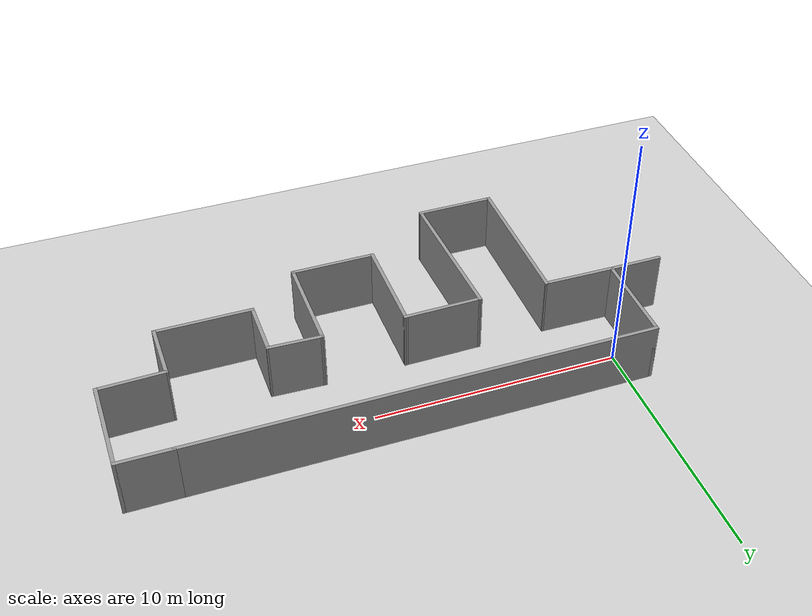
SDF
<sdf version="1.7">
 <world name="lab_world">
  <gravity>0 0 -9.8</gravity>
  <model name="ground_plane">
   <static>1</static>
   <link name="link">
    <collision name="collision">
     <geometry><plane><normal>0 0 1</normal><size>100 100</size></plane></geometry>
     <surface><friction><ode><mu>100</mu><mu2>50</mu2></ode></friction></surface>
    </collision>
    <visual name="visual">
     <cast_shadows>0</cast_shadows>
     <geometry><plane><normal>0 0 1</normal><size>100 100</size></plane></geometry>
     <material>
      <script><uri>file://media/materials/scripts/gazebo.material</uri><name>Gazebo/Grey</name></script>
     </material>
    </visual>
   </link>
  </model>
  <light name="sun" type="directional">
   <pose>0 0 10 0 -0 0</pose>
   <diffuse>0.8 0.8 0.8 1</diffuse>
   <specular>0.2 0.2 0.2 1</specular>
   <attenuation>
    <range>1000</range>
    <constant>0.9</constant>
    <linear>0.01</linear>
    <quadratic>0.001</quadratic>
   </attenuation>
   <direction>-0.5 0.1 -0.9</direction>
   <spot><inner_angle>0</inner_angle><outer_angle>0</outer_angle><falloff>0</falloff></spot>
  </light>
  <magnetic_field>6e-06 2.3e-05 -4.2e-05</magnetic_field>
  <atmosphere type="adiabatic"/>
  <physics type="ode">
   <max_step_size>0.001</max_step_size>
   <real_time_factor>1</real_time_factor>
   <real_time_update_rate>1000</real_time_update_rate>
  </physics>
  <scene><ambient>0.4 0.4 0.4 1</ambient><background>0.7 0.7 0.7 1</background><shadows>1</shadows></scene>
  <spherical_coordinates>
   <surface_model>EARTH_WGS84</surface_model>
   <latitude_deg>0</latitude_deg>
   <longitude_deg>0</longitude_deg>
   <elevation>0</elevation>
   <heading_deg>0</heading_deg>
  </spherical_coordinates>
  <model name="test">
   <pose>8.39076 -3.62662 0 0 -0 0</pose>
   <link name="Wall_0">
    <collision name="Wall_0_Collision">
     <geometry><box><size>2.25 0.15 2.5</size></box></geometry>
     <pose>0 0 1.25 0 -0 0</pose>
    </collision>
    <visual name="Wall_0_Visual">
     <pose>0 0 1.25 0 -0 0</pose>
     <geometry><box><size>2.25 0.15 2.5</size></box></geometry>
     <material>
      <script><uri>file://media/materials/scripts/gazebo.material</uri><name>Gazebo/Grey</name></script>
      <ambient>1 1 1 1</ambient>
     </material>
     <meta><layer>0</layer></meta>
    </visual>
    <pose>-10.3508 1.14662 0 0 -0 0</pose>
   </link>
   <link name="Wall_1">
    <collision name="Wall_1_Collision">
     <geometry><box><size>4 0.15 2.5</size></box></geometry>
     <pose>0 0 1.25 0 -0 0</pose>
    </collision>
    <visual name="Wall_1_Visual">
     <pose>0 0 1.25 0 -0 0</pose>
     <geometry><box><size>4 0.15 2.5</size></box></geometry>
     <material>
      <script><uri>file://media/materials/scripts/gazebo.material</uri><name>Gazebo/Grey</name></script>
      <ambient>1 1 1 1</ambient>
     </material>
     <meta><layer>0</layer></meta>
    </visual>
    <pose>-9.30076 3.07162 0 0 -0 1.5708</pose>
   </link>
   <link name="Wall_12">
    <collision name="Wall_12_Collision">
     <geometry><box><size>2.75 0.15 2.5</size></box></geometry>
     <pose>0 0 1.25 0 -0 0</pose>
    </collision>
    <visual name="Wall_12_Visual">
     <pose>0 0 1.25 0 -0 0</pose>
     <geometry><box><size>2.75 0.15 2.5</size></box></geometry>
     <material>
      <script><uri>file://media/materials/scripts/gazebo.material</uri><name>Gazebo/Grey</name></script>
      <ambient>1 1 1 1</ambient>
     </material>
     <meta><layer>0</layer></meta>
    </visual>
    <pose>10.0992 1.11144 0 0 -0 0.027054</pose>
   </link>
   <link name="Wall_13">
    <collision name="Wall_13_Collision">
     <geometry><box><size>4 0.15 2.5</size></box></geometry>
     <pose>0 0 1.25 0 -0 0</pose>
    </collision>
    <visual name="Wall_13_Visual">
     <pose>0 0 1.25 0 -0 0</pose>
     <geometry><box><size>4 0.15 2.5</size></box></geometry>
     <material>
      <script><uri>file://media/materials/scripts/gazebo.material</uri><name>Gazebo/Grey</name></script>
      <ambient>1 1 1 1</ambient>
     </material>
     <meta><layer>0</layer></meta>
    </visual>
    <pose>11.3992 3.07162 0 0 -0 1.5708</pose>
   </link>
   <link name="Wall_14">
    <collision name="Wall_14_Collision">
     <geometry><box><size>2.25 0.15 2.5</size></box></geometry>
     <pose>0 0 1.25 0 -0 0</pose>
    </collision>
    <visual name="Wall_14_Visual">
     <pose>0 0 1.25 0 -0 0</pose>
     <geometry><box><size>2.25 0.15 2.5</size></box></geometry>
     <material>
      <script><uri>file://media/materials/scripts/gazebo.material</uri><name>Gazebo/Grey</name></script>
      <ambient>1 1 1 1</ambient>
     </material>
     <meta><layer>0</layer></meta>
    </visual>
    <pose>10.3492 4.99662 0 0 -0 3.14159</pose>
   </link>
   <link name="Wall_16">
    <collision name="Wall_16_Collision">
     <geometry><box><size>6.25 0.15 2.5</size></box></geometry>
     <pose>0 0 1.25 0 -0 0</pose>
    </collision>
    <visual name="Wall_16_Visual">
     <pose>0 0 1.25 0 -0 0</pose>
     <geometry><box><size>6.25 0.15 2.5</size></box></geometry>
     <material>
      <script><uri>file://media/materials/scripts/gazebo.material</uri><name>Gazebo/Grey</name></script>
      <ambient>1 1 1 1</ambient>
     </material>
     <meta><layer>0</layer></meta>
    </visual>
    <pose>-6.45076 -1.94361 0 0 -0 -1.5708</pose>
   </link>
   <link name="Wall_17">
    <collision name="Wall_17_Collision">
     <geometry><box><size>3.25 0.15 2.5</size></box></geometry>
     <pose>0 0 1.25 0 -0 0</pose>
    </collision>
    <visual name="Wall_17_Visual">
     <pose>0 0 1.25 0 -0 0</pose>
     <geometry><box><size>3.25 0.15 2.5</size></box></geometry>
     <material>
      <script><uri>file://media/materials/scripts/gazebo.material</uri><name>Gazebo/Grey</name></script>
      <ambient>1 1 1 1</ambient>
     </material>
     <meta><layer>0</layer></meta>
    </visual>
    <pose>-4.90076 -4.99361 0 0 -0 0</pose>
   </link>
   <link name="Wall_18">
    <collision name="Wall_18_Collision">
     <geometry><box><size>6.25512 0.15 2.5</size></box></geometry>
     <pose>0 0 1.25 0 -0 0</pose>
    </collision>
    <visual name="Wall_18_Visual">
     <pose>0 0 1.25 0 -0 0</pose>
     <geometry><box><size>6.25512 0.15 2.5</size></box></geometry>
     <material>
      <script><uri>file://media/materials/scripts/gazebo.material</uri><name>Gazebo/Grey</name></script>
      <ambient>1 1 1 1</ambient>
     </material>
     <meta><layer>0</layer></meta>
    </visual>
    <pose>-3.47576 -1.94361 0 0 -0 1.61176</pose>
   </link>
   <link name="Wall_2">
    <collision name="Wall_2_Collision">
     <geometry><box><size>18.75 0.15 2.5</size></box></geometry>
     <pose>0 0 1.25 0 -0 0</pose>
    </collision>
    <visual name="Wall_2_Visual">
     <pose>0 0 1.25 0 -0 0</pose>
     <geometry><box><size>18.75 0.15 2.5</size></box></geometry>
     <material>
      <script><uri>file://media/materials/scripts/gazebo.material</uri><name>Gazebo/Grey</name></script>
      <ambient>1 1 1 1</ambient>
     </material>
     <meta><layer>0</layer></meta>
    </visual>
    <pose>-0.000762 4.99662 0 0 -0 0</pose>
   </link>
   <link name="Wall_20">
    <collision name="Wall_20_Collision">
     <geometry><box><size>4.25 0.15 2.5</size></box></geometry>
     <pose>0 0 1.25 0 -0 0</pose>
    </collision>
    <visual name="Wall_20_Visual">
     <pose>0 0 1.25 0 -0 0</pose>
     <geometry><box><size>4.25 0.15 2.5</size></box></geometry>
     <material>
      <script><uri>file://media/materials/scripts/gazebo.material</uri><name>Gazebo/Grey</name></script>
      <ambient>1 1 1 1</ambient>
     </material>
     <meta><layer>0</layer></meta>
    </visual>
    <pose>-0.500763 -0.903382 0 0 -0 -1.5708</pose>
   </link>
   <link name="Wall_21">
    <collision name="Wall_21_Collision">
     <geometry><box><size>3.5 0.15 2.5</size></box></geometry>
     <pose>0 0 1.25 0 -0 0</pose>
    </collision>
    <visual name="Wall_21_Visual">
     <pose>0 0 1.25 0 -0 0</pose>
     <geometry><box><size>3.5 0.15 2.5</size></box></geometry>
     <material>
      <script><uri>file://media/materials/scripts/gazebo.material</uri><name>Gazebo/Grey</name></script>
      <ambient>1 1 1 1</ambient>
     </material>
     <meta><layer>0</layer></meta>
    </visual>
    <pose>1.17424 -2.95338 0 0 -0 0</pose>
   </link>
   <link name="Wall_22">
    <collision name="Wall_22_Collision">
     <geometry><box><size>4.25 0.15 2.5</size></box></geometry>
     <pose>0 0 1.25 0 -0 0</pose>
    </collision>
    <visual name="Wall_22_Visual">
     <pose>0 0 1.25 0 -0 0</pose>
     <geometry><box><size>4.25 0.15 2.5</size></box></geometry>
     <material>
      <script><uri>file://media/materials/scripts/gazebo.material</uri><name>Gazebo/Grey</name></script>
      <ambient>1 1 1 1</ambient>
     </material>
     <meta><layer>0</layer></meta>
    </visual>
    <pose>2.84924 -0.903382 0 0 -0 1.5708</pose>
   </link>
   <link name="Wall_24">
    <collision name="Wall_24_Collision">
     <geometry><box><size>2.5 0.15 2.5</size></box></geometry>
     <pose>0 0 1.25 0 -0 0</pose>
    </collision>
    <visual name="Wall_24_Visual">
     <pose>0 0 1.25 0 -0 0</pose>
     <geometry><box><size>2.5 0.15 2.5</size></box></geometry>
     <material>
      <script><uri>file://media/materials/scripts/gazebo.material</uri><name>Gazebo/Grey</name></script>
      <ambient>1 1 1 1</ambient>
     </material>
     <meta><layer>0</layer></meta>
    </visual>
    <pose>4.94924 -0.098739 0 0 -0 -1.5708</pose>
   </link>
   <link name="Wall_25">
    <collision name="Wall_25_Collision">
     <geometry><box><size>4 0.15 2.5</size></box></geometry>
     <pose>0 0 1.25 0 -0 0</pose>
    </collision>
    <visual name="Wall_25_Visual">
     <pose>0 0 1.25 0 -0 0</pose>
     <geometry><box><size>4 0.15 2.5</size></box></geometry>
     <material>
      <script><uri>file://media/materials/scripts/gazebo.material</uri><name>Gazebo/Grey</name></script>
      <ambient>1 1 1 1</ambient>
     </material>
     <meta><layer>0</layer></meta>
    </visual>
    <pose>6.87424 -1.27374 0 0 -0 0</pose>
   </link>
   <link name="Wall_26">
    <collision name="Wall_26_Collision">
     <geometry><box><size>2.5 0.15 2.5</size></box></geometry>
     <pose>0 0 1.25 0 -0 0</pose>
    </collision>
    <visual name="Wall_26_Visual">
     <pose>0 0 1.25 0 -0 0</pose>
     <geometry><box><size>2.5 0.15 2.5</size></box></geometry>
     <material>
      <script><uri>file://media/materials/scripts/gazebo.material</uri><name>Gazebo/Grey</name></script>
      <ambient>1 1 1 1</ambient>
     </material>
     <meta><layer>0</layer></meta>
    </visual>
    <pose>8.79924 -0.098739 0 0 -0 1.5708</pose>
   </link>
   <link name="Wall_5">
    <collision name="Wall_5_Collision">
     <geometry><box><size>3 0.15 2.5</size></box></geometry>
     <pose>0 0 1.25 0 -0 0</pose>
    </collision>
    <visual name="Wall_5_Visual">
     <pose>0 0 1.25 0 -0 0</pose>
     <geometry><box><size>3 0.15 2.5</size></box></geometry>
     <material>
      <script><uri>file://media/materials/scripts/gazebo.material</uri><name>Gazebo/Grey</name></script>
      <ambient>1 1 1 1</ambient>
     </material>
     <meta><layer>0</layer></meta>
    </visual>
    <pose>-7.87576 1.12651 0 0 -0 -0.014114</pose>
   </link>
   <link name="Wall_7">
    <collision name="Wall_7_Collision">
     <geometry><box><size>3.25 0.15 2.5</size></box></geometry>
     <pose>0 0 1.25 0 -0 0</pose>
    </collision>
    <visual name="Wall_7_Visual">
     <pose>0 0 1.25 0 -0 0</pose>
     <geometry><box><size>3.25 0.15 2.5</size></box></geometry>
     <material>
      <script><uri>file://media/materials/scripts/gazebo.material</uri><name>Gazebo/Grey</name></script>
      <ambient>1 1 1 1</ambient>
     </material>
     <meta><layer>0</layer></meta>
    </visual>
    <pose>-2.05076 1.12651 0 0 -0 0.012976</pose>
   </link>
   <link name="Wall_9">
    <collision name="Wall_9_Collision">
     <geometry><box><size>2.25118 0.15 2.5</size></box></geometry>
     <pose>0 0 1.25 0 -0 0</pose>
    </collision>
    <visual name="Wall_9_Visual">
     <pose>0 0 1.25 0 -0 0</pose>
     <geometry><box><size>2.25118 0.15 2.5</size></box></geometry>
     <material>
      <script><uri>file://media/materials/scripts/gazebo.material</uri><name>Gazebo/Grey</name></script>
      <ambient>1 1 1 1</ambient>
     </material>
     <meta><layer>0</layer></meta>
    </visual>
    <pose>3.89924 1.11144 0 0 -0 -0.033491</pose>
   </link>
   <static>1</static>
  </model>
 </world>
</sdf>
